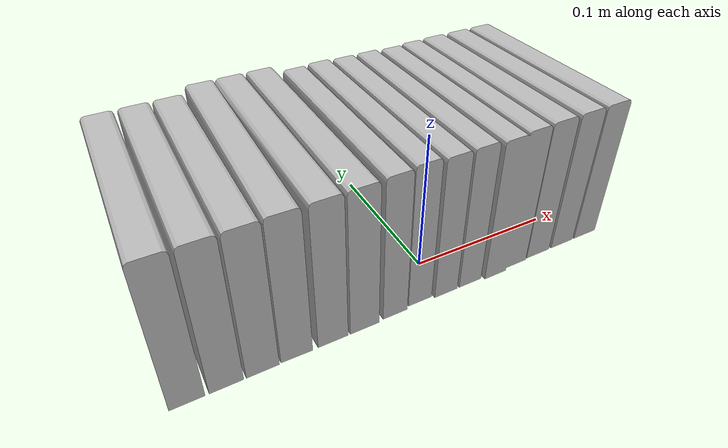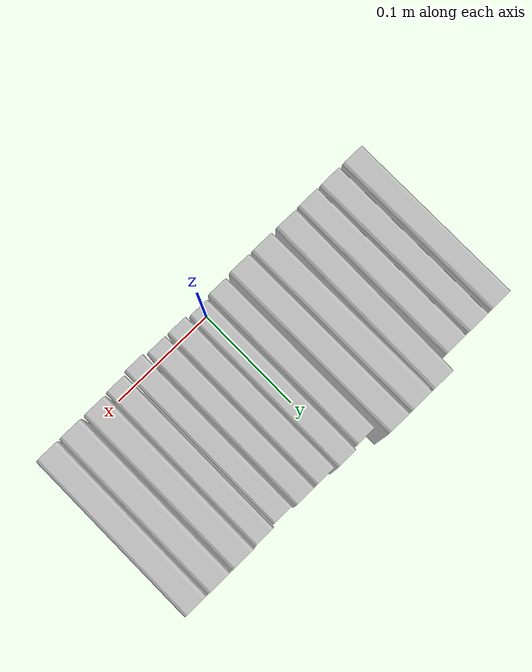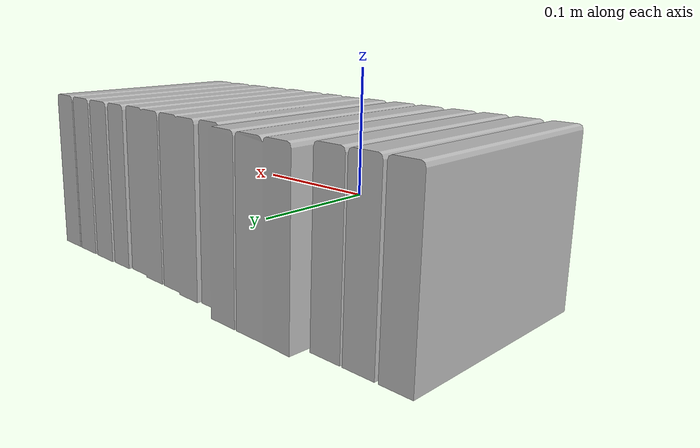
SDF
<?xml version="1.0" ?>
<sdf version="1.4">
  <model name="shelf1_book1_v2">
    <link name="body">
      <pose>0 0 0 0 0 0</pose>
      <inertial>
        <pose>   0.000876   0.083408   0.016335 0 0 0</pose>
        <mass>0.5</mass>
        <inertia>
          <ixx>0.01</ixx>
          <ixy>0</ixy>
          <ixz>0</ixz>
          <iyy>0.01</iyy>
          <iyz>0</iyz>
          <izz>0.01</izz>
        </inertia>
      </inertial>
      <collision name="collision">
        <geometry>
          <mesh>
            <uri>model://bookshelf/shelf1_items/book1_v2/book1_v2.dae</uri>
          </mesh>
        </geometry>
      </collision>
      <visual name="visual">
        <geometry>
          <mesh>
            <uri>model://bookshelf/shelf1_items/book1_v2/book1_v2.dae</uri>
          </mesh>
        </geometry>
      </visual>
    </link>
  </model>
</sdf>
